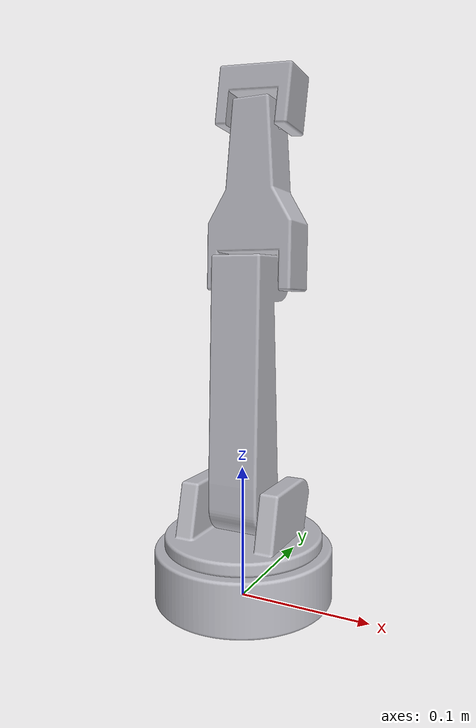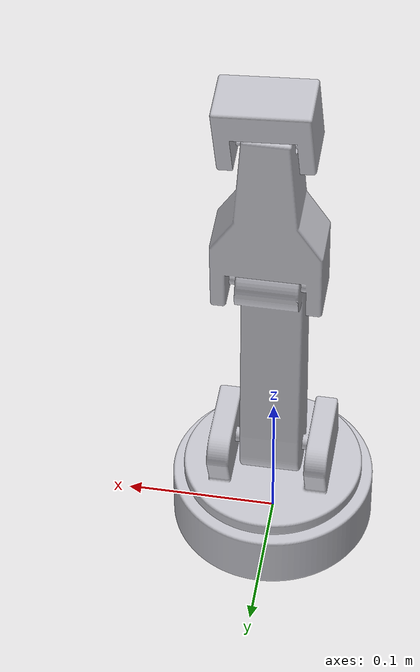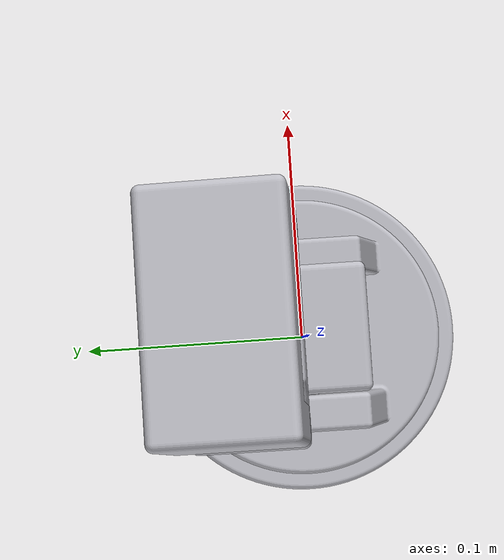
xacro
<?xml version="1.0" ?>
<robot name="urdf" xmlns:xacro="http://www.ros.org/wiki/xacro">

  <xacro:include filename="$(find urdf_description)/urdf/materials.xacro" />
  <xacro:include filename="$(find urdf_description)/urdf/urdf.trans" />
  <xacro:include filename="$(find urdf_description)/urdf/urdf.gazebo" />

  <link name="world"/>
  <joint name="world_fixed" type="fixed">
    <parent link="world"/>
    <child link="base_link"/>
    <origin xyz="0 0 0" rpy="1.5707963 0 0"/>
  </joint>

  <link name="base_link">
    <inertial>
      <origin xyz="-1.4210854715202004e-16 0.01997193071423041 -0.001498250638833376" rpy="0 0 0"/>
      <mass value="4.4888808326831455"/>
      <inertia ixx="0.005704" iyy="0.010214" izz="0.005704" ixy="0.0" iyz="0.0" ixz="0.0"/>
    </inertial>
    <visual>
      <origin xyz="0 0 0" rpy="0 0 0"/>
      <geometry>
        <mesh filename="file://$(find urdf_description)/meshes/base_link.stl" scale="0.001 0.001 0.001"/>
      </geometry>
      <material name="silver"/>
    </visual>
    <collision>
      <origin xyz="0 0 0" rpy="0 0 0"/>
      <geometry>
        <mesh filename="file://$(find urdf_description)/meshes/base_link.stl" scale="0.001 0.001 0.001"/>
      </geometry>
    </collision>
  </link>

  <link name="second_link_1">
    <inertial>
      <origin xyz="-6.774902727458384e-06 0.014971627783500002 -0.00013818298140451206" rpy="0 0 0"/>
      <mass value="1.4823148625325708"/>
      <inertia ixx="0.001266" iyy="0.002377" izz="0.001705" ixy="-0.0" iyz="1.7e-05" ixz="0.0"/>
    </inertial>
    <visual>
      <origin xyz="0.0 -0.039972 0.001498" rpy="0 0 0"/>
      <geometry>
        <mesh filename="file://$(find urdf_description)/meshes/second_link_1.stl" scale="0.001 0.001 0.001"/>
      </geometry>
      <material name="silver"/>
    </visual>
    <collision>
      <origin xyz="0.0 -0.039972 0.001498" rpy="0 0 0"/>
      <geometry>
        <mesh filename="file://$(find urdf_description)/meshes/second_link_1.stl" scale="0.001 0.001 0.001"/>
      </geometry>
    </collision>
  </link>

  <link name="third_link_1">
    <inertial>
      <origin xyz="-3.737930336089336e-18 0.08876551506405717 -0.0020782404508530626" rpy="0 0 0"/>
      <mass value="2.387528915395379"/>
      <inertia ixx="0.009546" iyy="0.000679" izz="0.0095" ixy="-0.0" iyz="0.000459" ixz="-0.0"/>
    </inertial>
    <visual>
      <origin xyz="-0.0 -0.069972 0.001498" rpy="0 0 0"/>
      <geometry>
        <mesh filename="file://$(find urdf_description)/meshes/third_link_1.stl" scale="0.001 0.001 0.001"/>
      </geometry>
      <material name="silver"/>
    </visual>
    <collision>
      <origin xyz="-0.0 -0.069972 0.001498" rpy="0 0 0"/>
      <geometry>
        <mesh filename="file://$(find urdf_description)/meshes/third_link_1.stl" scale="0.001 0.001 0.001"/>
      </geometry>
    </collision>
  </link>

  <link name="fourth_link_1">
    <inertial>
      <origin xyz="5.9445874542904334e-06 0.05885395838595783 -0.0026918084429297558" rpy="0 0 0"/>
      <mass value="1.6196524060997979"/>
      <inertia ixx="0.002338" iyy="0.000656" izz="0.002662" ixy="-1e-06" iyz="7.5e-05" ixz="-0.0"/>
    </inertial>
    <visual>
      <origin xyz="0.0 -0.242611 0.024238" rpy="0 0 0"/>
      <geometry>
        <mesh filename="file://$(find urdf_description)/meshes/fourth_link_1.stl" scale="0.001 0.001 0.001"/>
      </geometry>
      <material name="silver"/>
    </visual>
    <collision>
      <origin xyz="0.0 -0.242611 0.024238" rpy="0 0 0"/>
      <geometry>
        <mesh filename="file://$(find urdf_description)/meshes/fourth_link_1.stl" scale="0.001 0.001 0.001"/>
      </geometry>
    </collision>
  </link>

  <link name="fifth_link_1">
    <inertial>
      <origin xyz="0.001735674337229184 0.02229835595495555 -0.0010592459203292888" rpy="0 0 0"/>
      <mass value="0.4662210195037937"/>
      <inertia ixx="0.000115" iyy="0.00023" izz="0.000251" ixy="9e-06" iyz="1e-06" ixz="-0.0"/>
    </inertial>
    <visual>
      <origin xyz="-0.000129 -0.361211 0.029819" rpy="0 0 0"/>
      <geometry>
        <mesh filename="file://$(find urdf_description)/meshes/fifth_link_1.stl" scale="0.001 0.001 0.001"/>
      </geometry>
      <material name="silver"/>
    </visual>
    <collision>
      <origin xyz="-0.000129 -0.361211 0.029819" rpy="0 0 0"/>
      <geometry>
        <mesh filename="file://$(find urdf_description)/meshes/fifth_link_1.stl" scale="0.001 0.001 0.001"/>
      </geometry>
    </collision>
  </link>

  <joint name="base_rev" type="revolute">
    <origin xyz="0.0 0.039972 -0.001498" rpy="0 0 0"/>
    <parent link="base_link"/>
    <child link="second_link_1"/>
    <axis xyz="0.0 1.0 0.0"/>
    <limit upper="6.283185" lower="0.0" effort="100" velocity="100"/>
  </joint>

  <joint name="second_rev" type="revolute">
    <origin xyz="0.0 0.03 0.0" rpy="0 0 0"/>
    <parent link="second_link_1"/>
    <child link="third_link_1"/>
    <axis xyz="1.0 0.0 0.0"/>
    <limit upper="1.570796" lower="-1.570796" effort="100" velocity="100"/>
  </joint>

  <joint name="third_rev" type="revolute">
    <origin xyz="-0.0 0.172639 -0.02274" rpy="0 0 0"/>
    <parent link="third_link_1"/>
    <child link="fourth_link_1"/>
    <axis xyz="-1.0 -0.0 0.0"/>
    <limit upper="2.268928" lower="-0.872665" effort="100" velocity="100"/>
  </joint>

  <joint name="fourth_rev" type="revolute">
    <origin xyz="0.000129 0.1186 -0.005581" rpy="0 0 0"/>
    <parent link="fourth_link_1"/>
    <child link="fifth_link_1"/>
    <axis xyz="0.997169 -0.075141 0.002816"/>
    <limit upper="1.570796" lower="-1.570796" effort="100" velocity="100"/>
  </joint>

  <ros2_control name="urdf_arm_control" type="system">
    <hardware>
      <plugin>mock_components/GenericSystem</plugin>
    </hardware>
    <joint name="base_rev">
      <command_interface name="position">
        <param name="min">0.0</param>
        <param name="max">6.283185</param>
      </command_interface>
      <state_interface name="position">
        <param name="initial_value">0.0</param>
      </state_interface>
      <state_interface name="velocity"/>
    </joint>
    <joint name="second_rev">
      <command_interface name="position">
        <param name="min">-1.570796</param>
        <param name="max">1.570796</param>
      </command_interface>
      <state_interface name="position">
        <param name="initial_value">0.0</param>
      </state_interface>
      <state_interface name="velocity"/>
    </joint>
    <joint name="third_rev">
      <command_interface name="position">
        <param name="min">-0.872665</param>
        <param name="max">2.268928</param>
      </command_interface>
      <state_interface name="position">
        <param name="initial_value">0.0</param>
      </state_interface>
      <state_interface name="velocity"/>
    </joint>
    <joint name="fourth_rev">
      <command_interface name="position">
        <param name="min">-1.570796</param>
        <param name="max">1.570796</param>
      </command_interface>
      <state_interface name="position">
        <param name="initial_value">0.0</param>
      </state_interface>
      <state_interface name="velocity"/>
    </joint>
  </ros2_control>

</robot>

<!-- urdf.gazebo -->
<robot name="urdf" xmlns:xacro="http://www.ros.org/wiki/xacro" >

<xacro:property name="body_color" value="Gazebo/Silver" />

<gazebo>
  <plugin name="control" filename="libgazebo_ros_control.so"/>
</gazebo>
<gazebo reference="base_link">
  <material>${body_color}</material>
  <mu1>0.2</mu1>
  <mu2>0.2</mu2>
  <self_collide>true</self_collide>
  <gravity>true</gravity>
</gazebo>

<gazebo reference="second_link_1">
  <material>${body_color}</material>
  <mu1>0.2</mu1>
  <mu2>0.2</mu2>
  <self_collide>true</self_collide>
</gazebo>

<gazebo reference="third_link_1">
  <material>${body_color}</material>
  <mu1>0.2</mu1>
  <mu2>0.2</mu2>
  <self_collide>true</self_collide>
</gazebo>

<gazebo reference="fourth_link_1">
  <material>${body_color}</material>
  <mu1>0.2</mu1>
  <mu2>0.2</mu2>
  <self_collide>true</self_collide>
</gazebo>

<gazebo reference="fifth_link_1">
  <material>${body_color}</material>
  <mu1>0.2</mu1>
  <mu2>0.2</mu2>
  <self_collide>true</self_collide>
</gazebo>

</robot>
